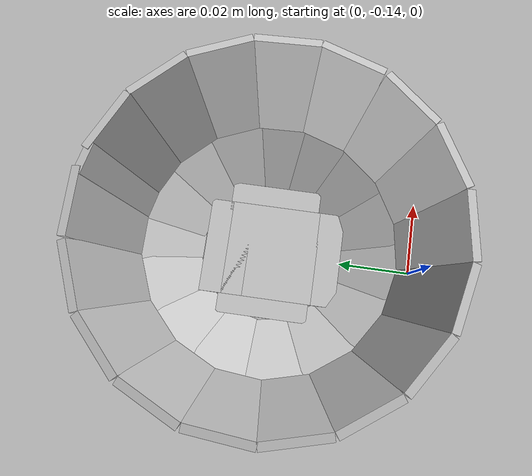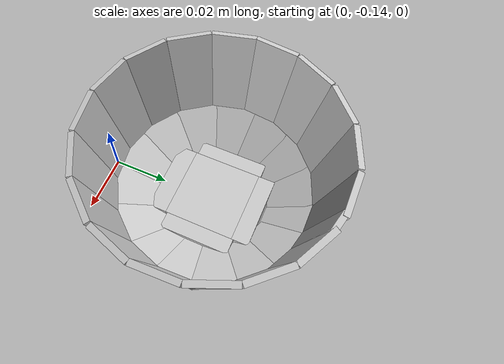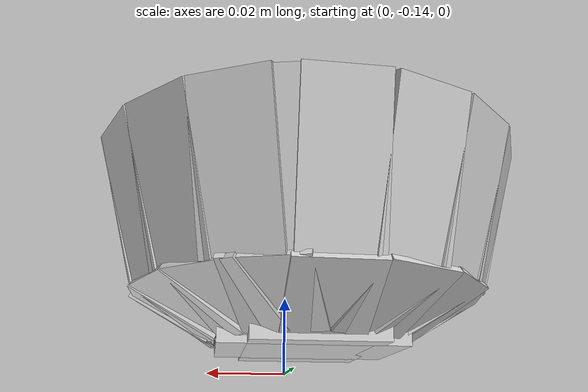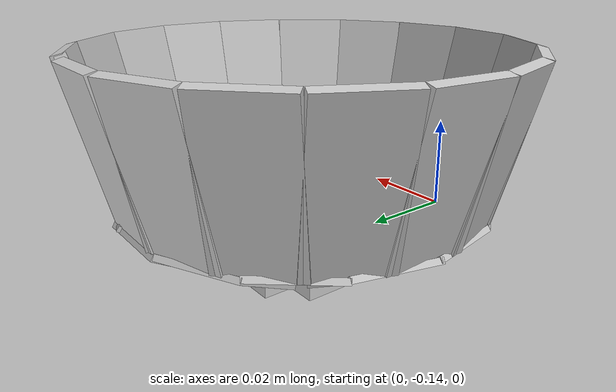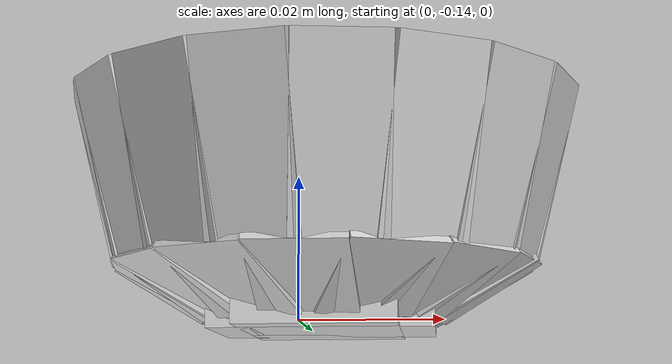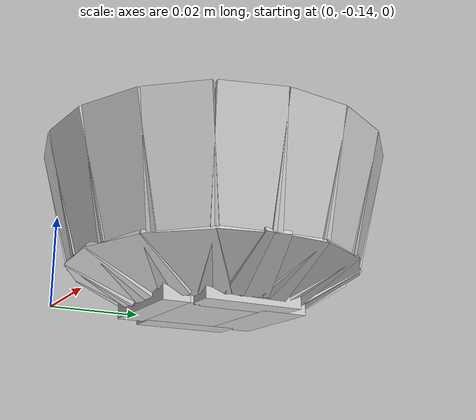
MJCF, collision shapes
<mujoco model="akita_purple_bowl_interference_dark_purple_small">
  <asset>
    <texture file="akita_purple_bowl_interference_dark_purple_small_texture.png" name="tex-akita_purple_bowl_interference_dark_purple_small" type="2d" />
    <material name="akita_purple_bowl_interference_dark_purple_small" reflectance="0.5" texrepeat="1 1" texture="tex-akita_purple_bowl_interference_dark_purple_small" texuniform="false" />
    <mesh file="visual/akita_bowl_vis.msh" name="akita_bowl_vis" scale="0.56 0.56 0.56" />
  </asset>
  <worldbody>
    <body>
      <body name="object" pos="0 -0.1 0">
        <geom solimp="0.998 0.998 0.001" solref="0.001 1" density="100" friction="0.95 0.3 0.1" type="mesh" mesh="akita_bowl_vis" conaffinity="0" contype="0" group="1" material="akita_purple_bowl_interference_dark_purple_small" />
        <geom solimp="0.998 0.998 0.001" solref="0.001 1" density="100" friction="0.95 0.3 0.1" type="box" pos="-0.00008 0.02689 0.00751" quat="0.60990 -0.35780 -0.35780 -0.60990" size="0.00057 0.00794 0.00950" group="0" rgba="0.8 0.8 0.8 0.3" />
        <geom solimp="0.998 0.998 0.001" solref="0.001 1" density="100" friction="0.95 0.3 0.1" type="box" pos="-0.01175 0.02414 0.00767" quat="0.45959 -0.42672 0.26704 0.73169" size="0.00057 0.00794 0.00950" group="0" rgba="0.8 0.8 0.8 0.3" />
        <geom solimp="0.998 0.998 0.001" solref="0.001 1" density="100" friction="0.95 0.3 0.1" type="box" pos="-0.02084 0.01686 0.00780" quat="0.29172 -0.47299 0.16619 0.81459" size="0.00057 0.00794 0.00950" group="0" rgba="0.8 0.8 0.8 0.3" />
        <geom solimp="0.998 0.998 0.001" solref="0.001 1" density="100" friction="0.95 0.3 0.1" type="box" pos="-0.02602 0.00634 0.00787" quat="0.10855 -0.49698 0.05658 0.85908" size="0.00057 0.00794 0.00950" group="0" rgba="0.8 0.8 0.8 0.3" />
        <geom solimp="0.998 0.998 0.001" solref="0.001 1" density="100" friction="0.95 0.3 0.1" type="box" pos="-0.02630 -0.00508 0.00787" quat="0.49761 -0.07722 0.86246 0.05074" size="0.00057 0.00794 0.00950" group="0" rgba="0.8 0.8 0.8 0.3" />
        <geom solimp="0.998 0.998 0.001" solref="0.001 1" density="100" friction="0.95 0.3 0.1" type="box" pos="-0.02154 -0.01592 0.00787" quat="0.47408 -0.26597 0.82406 0.15949" size="0.00057 0.00794 0.00950" group="0" rgba="0.8 0.8 0.8 0.3" />
        <geom solimp="0.998 0.998 0.001" solref="0.001 1" density="100" friction="0.95 0.3 0.1" type="box" pos="-0.01246 -0.02371 0.00787" quat="0.42646 -0.44336 0.74380 0.26138" size="0.00057 0.00794 0.00950" group="0" rgba="0.8 0.8 0.8 0.3" />
        <geom solimp="0.998 0.998 0.001" solref="0.001 1" density="100" friction="0.95 0.3 0.1" type="box" pos="-0.00097 -0.02677 0.00787" quat="0.59728 0.35787 0.34946 -0.62695" size="0.00057 0.00794 0.00950" group="0" rgba="0.8 0.8 0.8 0.3" />
        <geom solimp="0.998 0.998 0.001" solref="0.001 1" density="100" friction="0.95 0.3 0.1" type="box" pos="0.01081 -0.02450 0.00787" quat="0.72249 0.27055 0.42070 -0.47731" size="0.00057 0.00794 0.00950" group="0" rgba="0.8 0.8 0.8 0.3" />
        <geom solimp="0.998 0.998 0.001" solref="0.001 1" density="100" friction="0.95 0.3 0.1" type="box" pos="0.02018 -0.01761 0.00787" quat="0.17267 -0.80894 0.30891 0.46945" size="0.00057 0.00794 0.00950" group="0" rgba="0.8 0.8 0.8 0.3" />
        <geom solimp="0.998 0.998 0.001" solref="0.001 1" density="100" friction="0.95 0.3 0.1" type="box" pos="0.02578 -0.00728 0.00787" quat="0.85700 0.06550 0.49588 -0.12397" size="0.00057 0.00794 0.00950" group="0" rgba="0.8 0.8 0.8 0.3" />
        <geom solimp="0.998 0.998 0.001" solref="0.001 1" density="100" friction="0.95 0.3 0.1" type="box" pos="0.02578 -0.00728 0.00787" quat="0.85700 0.06550 0.49588 -0.12397" size="0.00057 0.00794 0.00950" group="0" rgba="0.8 0.8 0.8 0.3" />
        <geom solimp="0.998 0.998 0.001" solref="0.001 1" density="100" friction="0.95 0.3 0.1" type="box" pos="0.02678 0.00018 0.00787" quat="0.86591 -0.00473 0.50017 -0.00248" size="0.00057 0.00794 0.00950" group="0" rgba="0.8 0.8 0.8 0.3" />
        <geom solimp="0.998 0.998 0.001" solref="0.001 1" density="100" friction="0.95 0.3 0.1" type="box" pos="0.02429 0.01129 0.00787" quat="0.84663 -0.11101 0.48771 0.18175" size="0.00057 0.00794 0.00950" group="0" rgba="0.8 0.8 0.8 0.3" />
        <geom solimp="0.998 0.998 0.001" solref="0.001 1" density="100" friction="0.95 0.3 0.1" type="box" pos="0.01725 0.02050 0.00787" quat="0.21392 0.78724 0.36065 -0.45213" size="0.00057 0.00794 0.00950" group="0" rgba="0.8 0.8 0.8 0.3" />
        <geom solimp="0.998 0.998 0.001" solref="0.001 1" density="100" friction="0.95 0.3 0.1" type="box" pos="0.00926 0.02514 0.00787" quat="0.71324 -0.28870 0.40847 0.49101" size="0.00057 0.00794 0.00950" group="0" rgba="0.8 0.8 0.8 0.3" />
        <geom solimp="0.998 0.998 0.001" solref="0.001 1" density="100" friction="0.95 0.3 0.1" type="box" pos="-0.00008 0.03770 0.02694" quat="0.09041 0.70130 0.70130 -0.09041" size="0.00102 0.00747 0.01500" group="0" rgba="0.8 0.8 0.8 0.3" />
        <geom solimp="0.998 0.998 0.001" solref="0.001 1" density="100" friction="0.95 0.3 0.1" type="box" pos="-0.01379 0.03508 0.02694" quat="0.10558 0.55930 0.81905 -0.07209" size="0.00102 0.00747 0.01500" group="0" rgba="0.8 0.8 0.8 0.3" />
        <geom solimp="0.998 0.998 0.001" solref="0.001 1" density="100" friction="0.95 0.3 0.1" type="box" pos="-0.02539 0.02786 0.02694" quat="0.11689 0.40164 0.90683 -0.05176" size="0.00102 0.00747 0.01500" group="0" rgba="0.8 0.8 0.8 0.3" />
        <geom solimp="0.998 0.998 0.001" solref="0.001 1" density="100" friction="0.95 0.3 0.1" type="box" pos="-0.03371 0.01686 0.02694" quat="0.22890 -0.12439 0.02951 0.96502" size="0.00102 0.00747 0.01500" group="0" rgba="0.8 0.8 0.8 0.3" />
        <geom solimp="0.998 0.998 0.001" solref="0.001 1" density="100" friction="0.95 0.3 0.1" type="box" pos="-0.03751 0.00368 0.02694" quat="0.12768 0.04949 0.99056 -0.00638" size="0.00102 0.00747 0.01500" group="0" rgba="0.8 0.8 0.8 0.3" />
        <geom solimp="0.998 0.998 0.001" solref="0.001 1" density="100" friction="0.95 0.3 0.1" type="box" pos="-0.03644 -0.00963 0.02694" quat="0.12679 0.12680 0.01635 -0.98366" size="0.00102 0.00747 0.01500" group="0" rgba="0.8 0.8 0.8 0.3" />
        <geom solimp="0.998 0.998 0.001" solref="0.001 1" density="100" friction="0.95 0.3 0.1" type="box" pos="-0.03060 -0.02201 0.02694" quat="0.12173 -0.30325 0.94430 0.03909" size="0.00102 0.00747 0.01500" group="0" rgba="0.8 0.8 0.8 0.3" />
        <geom solimp="0.998 0.998 0.001" solref="0.001 1" density="100" friction="0.95 0.3 0.1" type="box" pos="-0.02061 -0.03157 0.02694" quat="0.11249 -0.47128 0.87267 0.06075" size="0.00102 0.00747 0.01500" group="0" rgba="0.8 0.8 0.8 0.3" />
        <geom solimp="0.998 0.998 0.001" solref="0.001 1" density="100" friction="0.95 0.3 0.1" type="box" pos="-0.00808 -0.03682 0.02694" quat="0.62080 0.09971 0.08003 -0.77348" size="0.00102 0.00747 0.01500" group="0" rgba="0.8 0.8 0.8 0.3" />
        <geom solimp="0.998 0.998 0.001" solref="0.001 1" density="100" friction="0.95 0.3 0.1" type="box" pos="0.00558 -0.03728 0.02694" quat="0.75082 0.08352 0.09678 -0.64802" size="0.00102 0.00747 0.01500" group="0" rgba="0.8 0.8 0.8 0.3" />
        <geom solimp="0.998 0.998 0.001" solref="0.001 1" density="100" friction="0.95 0.3 0.1" type="box" pos="0.01860 -0.03278 0.02694" quat="0.06445 -0.85651 0.50004 0.11041" size="0.00102 0.00747 0.01500" group="0" rgba="0.8 0.8 0.8 0.3" />
        <geom solimp="0.998 0.998 0.001" solref="0.001 1" density="100" friction="0.95 0.3 0.1" type="box" pos="0.02905 -0.02402 0.02694" quat="0.93283 0.04342 0.12024 -0.33687" size="0.00102 0.00747 0.01500" group="0" rgba="0.8 0.8 0.8 0.3" />
        <geom solimp="0.998 0.998 0.001" solref="0.001 1" density="100" friction="0.95 0.3 0.1" type="box" pos="0.03580 -0.01180 0.02694" quat="0.02040 -0.97909 0.15826 0.12620" size="0.00102 0.00747 0.01500" group="0" rgba="0.8 0.8 0.8 0.3" />
        <geom solimp="0.998 0.998 0.001" solref="0.001 1" density="100" friction="0.95 0.3 0.1" type="box" pos="0.03766 0.00148 0.02694" quat="0.00238 0.99162 0.01844 -0.12782" size="0.00102 0.00747 0.01500" group="0" rgba="0.8 0.8 0.8 0.3" />
        <geom solimp="0.998 0.998 0.001" solref="0.001 1" density="100" friction="0.95 0.3 0.1" type="box" pos="0.03766 0.00148 0.02694" quat="0.00238 0.99162 0.01844 -0.12782" size="0.00102 0.00747 0.01500" group="0" rgba="0.8 0.8 0.8 0.3" />
        <geom solimp="0.998 0.998 0.001" solref="0.001 1" density="100" friction="0.95 0.3 0.1" type="box" pos="0.03473 0.01466 0.02694" quat="0.02524 0.97229 0.19574 -0.12533" size="0.00102 0.00747 0.01500" group="0" rgba="0.8 0.8 0.8 0.3" />
        <geom solimp="0.998 0.998 0.001" solref="0.001 1" density="100" friction="0.95 0.3 0.1" type="box" pos="0.02733 0.02596 0.02694" quat="0.04729 0.92146 0.36683 -0.11878" size="0.00102 0.00747 0.01500" group="0" rgba="0.8 0.8 0.8 0.3" />
        <geom solimp="0.998 0.998 0.001" solref="0.001 1" density="100" friction="0.95 0.3 0.1" type="box" pos="0.01654 0.03387 0.02694" quat="0.06760 0.84175 0.52452 -0.10850" size="0.00102 0.00747 0.01500" group="0" rgba="0.8 0.8 0.8 0.3" />
        <geom solimp="0.998 0.998 0.001" solref="0.001 1" density="100" friction="0.95 0.3 0.1" type="box" pos="0.00845 0.03674 0.02694" quat="0.07953 0.77656 0.61693 -0.10010" size="0.00100 0.00355 0.01498" group="0" rgba="0.8 0.8 0.8 0.3" />
        <geom solimp="0.998 0.998 0.001" solref="0.001 1" density="100" friction="0.95 0.3 0.1" type="box" pos="-0.00000 -0.00060 0.00334" quat="0.70711 0.00000 0.70711 0.00000" size="0.00206 0.01238 0.01294" group="0" rgba="0.8 0.8 0.8 0.3" />
        <geom solimp="0.998 0.998 0.001" solref="0.001 1" density="100" friction="0.95 0.3 0.1" type="box" pos="-0.00000 -0.01617 0.00334" quat="0.70711 0.00000 0.70711 0.00000" size="0.00206 0.00345 0.01294" group="0" rgba="0.8 0.8 0.8 0.3" />
        <geom solimp="0.998 0.998 0.001" solref="0.001 1" density="100" friction="0.95 0.3 0.1" type="box" pos="0.01457 0.00013 0.00334" quat="0.50000 -0.50000 0.50000 0.50000" size="0.00206 0.00396 0.01238" group="0" rgba="0.8 0.8 0.8 0.3" />
        <geom solimp="0.998 0.998 0.001" solref="0.001 1" density="100" friction="0.95 0.3 0.1" type="box" pos="-0.01448 0.00003 0.00334" quat="0.50000 -0.50000 0.50000 0.50000" size="0.00206 0.00362 0.01238" group="0" rgba="0.8 0.8 0.8 0.3" />
        <geom solimp="0.998 0.998 0.001" solref="0.001 1" density="100" friction="0.95 0.3 0.1" type="box" pos="-0.00000 0.01192 0.00334" quat="0.00000 0.70711 0.00000 -0.70711" size="0.00206 0.00593 0.01294" group="0" rgba="0.8 0.8 0.8 0.3" />
      </body>
      <site rgba="0 0 0 0" size="0.00400" pos="0.00000 0.00000 -0.04800" name="bottom_site" />
      <site rgba="0 0 0 0" size="0.00400" pos="0.00000 0.00000 0.03200" name="top_site" />
      <site rgba="0 0 0 0" size="0.00400" pos="0.02000 0.02000 0.00000" name="horizontal_radius_site" />
    </body>
  </worldbody>
</mujoco>
